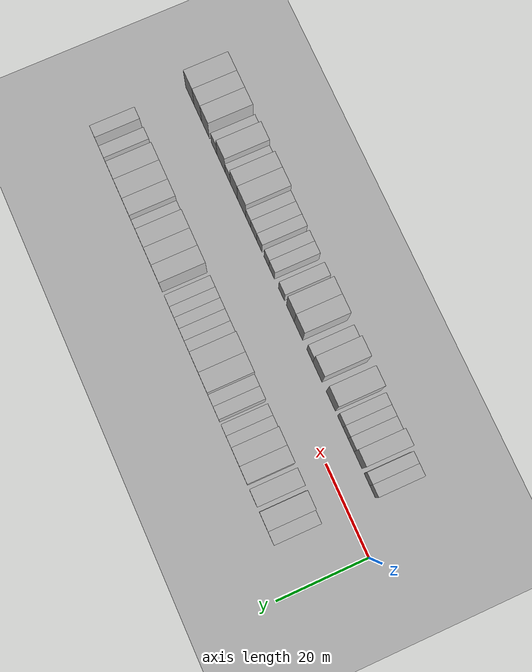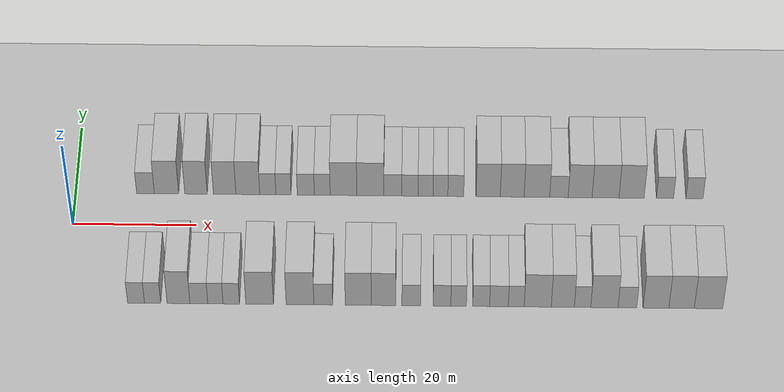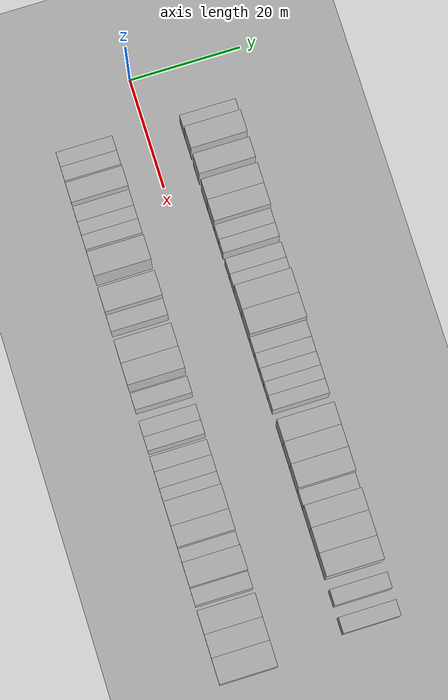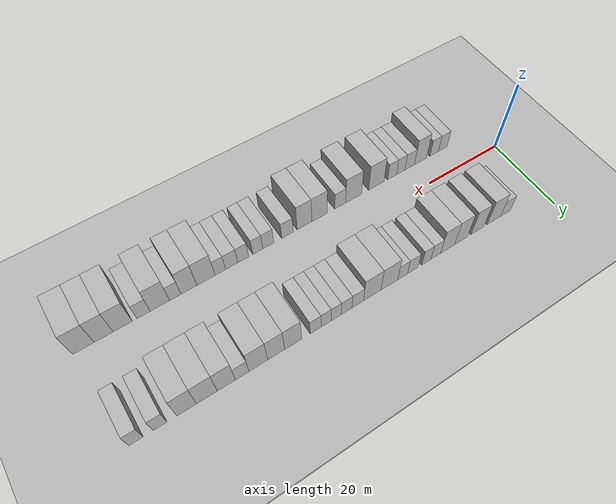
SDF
<sdf version="1.6">
 <world name="default">
  <include><name>ground_plane_1</name><uri>model://HANNAS_ground_plane</uri></include>
  <include>
   <name>ground_plane_2</name>
   <uri>model://HANNAS_ground_plane</uri>
   <pose>100 0 0  0 0 0</pose>
  </include>
  <model name="building_1">
   <static>1</static>
   <pose>11.4405 11.0000 0 0.000000 0.000000 1.570796</pose>
   <link name="link">
    <pose>0 0 3.00 0 0 0</pose>
    <collision name="collision"><geometry><box><size>10.0000 2.8811 6.0000</size></box></geometry></collision>
    <visual name="visual">
     <cast_shadows>0</cast_shadows>
     <geometry><box><size>10.0000 2.8811 6.0000</size></box></geometry>
     <material>
      <script>
       <uri>model://HANNAS_wall/materials/scripts</uri>
       <uri>model://HANNAS_wall/materials/textures</uri>
       <name>vrc/HANNAS_wall</name>
      </script>
     </material>
    </visual>
   </link>
  </model>
  <model name="building_2">
   <static>1</static>
   <pose>14.8605 11.0000 0 0.000000 0.000000 1.570796</pose>
   <link name="link">
    <pose>0 0 4.50 0 0 0</pose>
    <collision name="collision"><geometry><box><size>10.0000 3.9588 9.0000</size></box></geometry></collision>
    <visual name="visual">
     <cast_shadows>0</cast_shadows>
     <geometry><box><size>10.0000 3.9588 9.0000</size></box></geometry>
     <material>
      <script>
       <uri>model://HANNAS_wall/materials/scripts</uri>
       <uri>model://HANNAS_wall/materials/textures</uri>
       <name>vrc/HANNAS_wall</name>
      </script>
     </material>
    </visual>
   </link>
  </model>
  <model name="building_3">
   <static>1</static>
   <pose>19.6624 11.0000 0 0.000000 0.000000 1.570796</pose>
   <link name="link">
    <pose>0 0 4.50 0 0 0</pose>
    <collision name="collision"><geometry><box><size>10.0000 3.6451 9.0000</size></box></geometry></collision>
    <visual name="visual">
     <cast_shadows>0</cast_shadows>
     <geometry><box><size>10.0000 3.6451 9.0000</size></box></geometry>
     <material>
      <script>
       <uri>model://HANNAS_wall/materials/scripts</uri>
       <uri>model://HANNAS_wall/materials/textures</uri>
       <name>vrc/HANNAS_wall</name>
      </script>
     </material>
    </visual>
   </link>
  </model>
  <model name="building_4">
   <static>1</static>
   <pose>24.3171 11.0000 0 0.000000 0.000000 1.570796</pose>
   <link name="link">
    <pose>0 0 4.50 0 0 0</pose>
    <collision name="collision"><geometry><box><size>10.0000 3.6643 9.0000</size></box></geometry></collision>
    <visual name="visual">
     <cast_shadows>0</cast_shadows>
     <geometry><box><size>10.0000 3.6643 9.0000</size></box></geometry>
     <material>
      <script>
       <uri>model://HANNAS_wall/materials/scripts</uri>
       <uri>model://HANNAS_wall/materials/textures</uri>
       <name>vrc/HANNAS_wall</name>
      </script>
     </material>
    </visual>
   </link>
  </model>
  <model name="building_5">
   <static>1</static>
   <pose>28.0884 11.0000 0 0.000000 0.000000 1.570796</pose>
   <link name="link">
    <pose>0 0 4.50 0 0 0</pose>
    <collision name="collision"><geometry><box><size>10.0000 3.8783 9.0000</size></box></geometry></collision>
    <visual name="visual">
     <cast_shadows>0</cast_shadows>
     <geometry><box><size>10.0000 3.8783 9.0000</size></box></geometry>
     <material>
      <script>
       <uri>model://HANNAS_wall/materials/scripts</uri>
       <uri>model://HANNAS_wall/materials/textures</uri>
       <name>vrc/HANNAS_wall</name>
      </script>
     </material>
    </visual>
   </link>
  </model>
  <model name="building_6">
   <static>1</static>
   <pose>31.3424 11.0000 0 0.000000 0.000000 1.570796</pose>
   <link name="link">
    <pose>0 0 3.00 0 0 0</pose>
    <collision name="collision"><geometry><box><size>10.0000 2.6296 6.0000</size></box></geometry></collision>
    <visual name="visual">
     <cast_shadows>0</cast_shadows>
     <geometry><box><size>10.0000 2.6296 6.0000</size></box></geometry>
     <material>
      <script>
       <uri>model://HANNAS_wall/materials/scripts</uri>
       <uri>model://HANNAS_wall/materials/textures</uri>
       <name>vrc/HANNAS_wall</name>
      </script>
     </material>
    </visual>
   </link>
  </model>
  <model name="building_7">
   <static>1</static>
   <pose>33.8938 11.0000 0 0.000000 0.000000 1.570796</pose>
   <link name="link">
    <pose>0 0 3.00 0 0 0</pose>
    <collision name="collision"><geometry><box><size>10.0000 2.4733 6.0000</size></box></geometry></collision>
    <visual name="visual">
     <cast_shadows>0</cast_shadows>
     <geometry><box><size>10.0000 2.4733 6.0000</size></box></geometry>
     <material>
      <script>
       <uri>model://HANNAS_wall/materials/scripts</uri>
       <uri>model://HANNAS_wall/materials/textures</uri>
       <name>vrc/HANNAS_wall</name>
      </script>
     </material>
    </visual>
   </link>
  </model>
  <model name="building_8">
   <static>1</static>
   <pose>37.5227 11.0000 0 0.000000 0.000000 1.570796</pose>
   <link name="link">
    <pose>0 0 3.00 0 0 0</pose>
    <collision name="collision"><geometry><box><size>10.0000 2.7844 6.0000</size></box></geometry></collision>
    <visual name="visual">
     <cast_shadows>0</cast_shadows>
     <geometry><box><size>10.0000 2.7844 6.0000</size></box></geometry>
     <material>
      <script>
       <uri>model://HANNAS_wall/materials/scripts</uri>
       <uri>model://HANNAS_wall/materials/textures</uri>
       <name>vrc/HANNAS_wall</name>
      </script>
     </material>
    </visual>
   </link>
  </model>
  <model name="building_9">
   <static>1</static>
   <pose>40.1986 11.0000 0 0.000000 0.000000 1.570796</pose>
   <link name="link">
    <pose>0 0 3.00 0 0 0</pose>
    <collision name="collision"><geometry><box><size>10.0000 2.5675 6.0000</size></box></geometry></collision>
    <visual name="visual">
     <cast_shadows>0</cast_shadows>
     <geometry><box><size>10.0000 2.5675 6.0000</size></box></geometry>
     <material>
      <script>
       <uri>model://HANNAS_wall/materials/scripts</uri>
       <uri>model://HANNAS_wall/materials/textures</uri>
       <name>vrc/HANNAS_wall</name>
      </script>
     </material>
    </visual>
   </link>
  </model>
  <model name="building_10">
   <static>1</static>
   <pose>43.6532 11.0000 0 0.000000 0.000000 1.570796</pose>
   <link name="link">
    <pose>0 0 4.50 0 0 0</pose>
    <collision name="collision"><geometry><box><size>10.0000 4.3418 9.0000</size></box></geometry></collision>
    <visual name="visual">
     <cast_shadows>0</cast_shadows>
     <geometry><box><size>10.0000 4.3418 9.0000</size></box></geometry>
     <material>
      <script>
       <uri>model://HANNAS_wall/materials/scripts</uri>
       <uri>model://HANNAS_wall/materials/textures</uri>
       <name>vrc/HANNAS_wall</name>
      </script>
     </material>
    </visual>
   </link>
  </model>
  <model name="building_11">
   <static>1</static>
   <pose>48.0235 11.0000 0 0.000000 0.000000 1.570796</pose>
   <link name="link">
    <pose>0 0 4.50 0 0 0</pose>
    <collision name="collision"><geometry><box><size>10.0000 4.3988 9.0000</size></box></geometry></collision>
    <visual name="visual">
     <cast_shadows>0</cast_shadows>
     <geometry><box><size>10.0000 4.3988 9.0000</size></box></geometry>
     <material>
      <script>
       <uri>model://HANNAS_wall/materials/scripts</uri>
       <uri>model://HANNAS_wall/materials/textures</uri>
       <name>vrc/HANNAS_wall</name>
      </script>
     </material>
    </visual>
   </link>
  </model>
  <model name="building_12">
   <static>1</static>
   <pose>51.6736 11.0000 0 0.000000 0.000000 1.570796</pose>
   <link name="link">
    <pose>0 0 3.00 0 0 0</pose>
    <collision name="collision"><geometry><box><size>10.0000 2.9014 6.0000</size></box></geometry></collision>
    <visual name="visual">
     <cast_shadows>0</cast_shadows>
     <geometry><box><size>10.0000 2.9014 6.0000</size></box></geometry>
     <material>
      <script>
       <uri>model://HANNAS_wall/materials/scripts</uri>
       <uri>model://HANNAS_wall/materials/textures</uri>
       <name>vrc/HANNAS_wall</name>
      </script>
     </material>
    </visual>
   </link>
  </model>
  <model name="building_13">
   <static>1</static>
   <pose>54.4530 11.0000 0 0.000000 0.000000 1.570796</pose>
   <link name="link">
    <pose>0 0 3.00 0 0 0</pose>
    <collision name="collision"><geometry><box><size>10.0000 2.6574 6.0000</size></box></geometry></collision>
    <visual name="visual">
     <cast_shadows>0</cast_shadows>
     <geometry><box><size>10.0000 2.6574 6.0000</size></box></geometry>
     <material>
      <script>
       <uri>model://HANNAS_wall/materials/scripts</uri>
       <uri>model://HANNAS_wall/materials/textures</uri>
       <name>vrc/HANNAS_wall</name>
      </script>
     </material>
    </visual>
   </link>
  </model>
  <model name="building_14">
   <static>1</static>
   <pose>56.9940 11.0000 0 0.000000 0.000000 1.570796</pose>
   <link name="link">
    <pose>0 0 3.00 0 0 0</pose>
    <collision name="collision"><geometry><box><size>10.0000 2.4246 6.0000</size></box></geometry></collision>
    <visual name="visual">
     <cast_shadows>0</cast_shadows>
     <geometry><box><size>10.0000 2.4246 6.0000</size></box></geometry>
     <material>
      <script>
       <uri>model://HANNAS_wall/materials/scripts</uri>
       <uri>model://HANNAS_wall/materials/textures</uri>
       <name>vrc/HANNAS_wall</name>
      </script>
     </material>
    </visual>
   </link>
  </model>
  <model name="building_15">
   <static>1</static>
   <pose>59.4090 11.0000 0 0.000000 0.000000 1.570796</pose>
   <link name="link">
    <pose>0 0 3.00 0 0 0</pose>
    <collision name="collision"><geometry><box><size>10.0000 2.4054 6.0000</size></box></geometry></collision>
    <visual name="visual">
     <cast_shadows>0</cast_shadows>
     <geometry><box><size>10.0000 2.4054 6.0000</size></box></geometry>
     <material>
      <script>
       <uri>model://HANNAS_wall/materials/scripts</uri>
       <uri>model://HANNAS_wall/materials/textures</uri>
       <name>vrc/HANNAS_wall</name>
      </script>
     </material>
    </visual>
   </link>
  </model>
  <model name="building_16">
   <static>1</static>
   <pose>61.9006 11.0000 0 0.000000 0.000000 1.570796</pose>
   <link name="link">
    <pose>0 0 3.00 0 0 0</pose>
    <collision name="collision"><geometry><box><size>10.0000 2.5778 6.0000</size></box></geometry></collision>
    <visual name="visual">
     <cast_shadows>0</cast_shadows>
     <geometry><box><size>10.0000 2.5778 6.0000</size></box></geometry>
     <material>
      <script>
       <uri>model://HANNAS_wall/materials/scripts</uri>
       <uri>model://HANNAS_wall/materials/textures</uri>
       <name>vrc/HANNAS_wall</name>
      </script>
     </material>
    </visual>
   </link>
  </model>
  <model name="building_17">
   <static>1</static>
   <pose>67.1540 11.0000 0 0.000000 0.000000 1.570796</pose>
   <link name="link">
    <pose>0 0 4.50 0 0 0</pose>
    <collision name="collision"><geometry><box><size>10.0000 3.9290 9.0000</size></box></geometry></collision>
    <visual name="visual">
     <cast_shadows>0</cast_shadows>
     <geometry><box><size>10.0000 3.9290 9.0000</size></box></geometry>
     <material>
      <script>
       <uri>model://HANNAS_wall/materials/scripts</uri>
       <uri>model://HANNAS_wall/materials/textures</uri>
       <name>vrc/HANNAS_wall</name>
      </script>
     </material>
    </visual>
   </link>
  </model>
  <model name="building_18">
   <static>1</static>
   <pose>71.0563 11.0000 0 0.000000 0.000000 1.570796</pose>
   <link name="link">
    <pose>0 0 4.50 0 0 0</pose>
    <collision name="collision"><geometry><box><size>10.0000 3.8756 9.0000</size></box></geometry></collision>
    <visual name="visual">
     <cast_shadows>0</cast_shadows>
     <geometry><box><size>10.0000 3.8756 9.0000</size></box></geometry>
     <material>
      <script>
       <uri>model://HANNAS_wall/materials/scripts</uri>
       <uri>model://HANNAS_wall/materials/textures</uri>
       <name>vrc/HANNAS_wall</name>
      </script>
     </material>
    </visual>
   </link>
  </model>
  <model name="building_19">
   <static>1</static>
   <pose>75.0803 11.0000 0 0.000000 0.000000 1.570796</pose>
   <link name="link">
    <pose>0 0 4.50 0 0 0</pose>
    <collision name="collision"><geometry><box><size>10.0000 4.1723 9.0000</size></box></geometry></collision>
    <visual name="visual">
     <cast_shadows>0</cast_shadows>
     <geometry><box><size>10.0000 4.1723 9.0000</size></box></geometry>
     <material>
      <script>
       <uri>model://HANNAS_wall/materials/scripts</uri>
       <uri>model://HANNAS_wall/materials/textures</uri>
       <name>vrc/HANNAS_wall</name>
      </script>
     </material>
    </visual>
   </link>
  </model>
  <model name="building_20">
   <static>1</static>
   <pose>78.6641 11.0000 0 0.000000 0.000000 1.570796</pose>
   <link name="link">
    <pose>0 0 3.00 0 0 0</pose>
    <collision name="collision"><geometry><box><size>10.0000 2.9954 6.0000</size></box></geometry></collision>
    <visual name="visual">
     <cast_shadows>0</cast_shadows>
     <geometry><box><size>10.0000 2.9954 6.0000</size></box></geometry>
     <material>
      <script>
       <uri>model://HANNAS_wall/materials/scripts</uri>
       <uri>model://HANNAS_wall/materials/textures</uri>
       <name>vrc/HANNAS_wall</name>
      </script>
     </material>
    </visual>
   </link>
  </model>
  <model name="building_21">
   <static>1</static>
   <pose>82.1052 11.0000 0 0.000000 0.000000 1.570796</pose>
   <link name="link">
    <pose>0 0 4.50 0 0 0</pose>
    <collision name="collision"><geometry><box><size>10.0000 3.8867 9.0000</size></box></geometry></collision>
    <visual name="visual">
     <cast_shadows>0</cast_shadows>
     <geometry><box><size>10.0000 3.8867 9.0000</size></box></geometry>
     <material>
      <script>
       <uri>model://HANNAS_wall/materials/scripts</uri>
       <uri>model://HANNAS_wall/materials/textures</uri>
       <name>vrc/HANNAS_wall</name>
      </script>
     </material>
    </visual>
   </link>
  </model>
  <model name="building_22">
   <static>1</static>
   <pose>86.2344 11.0000 0 0.000000 0.000000 1.570796</pose>
   <link name="link">
    <pose>0 0 4.50 0 0 0</pose>
    <collision name="collision"><geometry><box><size>10.0000 4.3718 9.0000</size></box></geometry></collision>
    <visual name="visual">
     <cast_shadows>0</cast_shadows>
     <geometry><box><size>10.0000 4.3718 9.0000</size></box></geometry>
     <material>
      <script>
       <uri>model://HANNAS_wall/materials/scripts</uri>
       <uri>model://HANNAS_wall/materials/textures</uri>
       <name>vrc/HANNAS_wall</name>
      </script>
     </material>
    </visual>
   </link>
  </model>
  <model name="building_23">
   <static>1</static>
   <pose>90.4576 11.0000 0 0.000000 0.000000 1.570796</pose>
   <link name="link">
    <pose>0 0 4.50 0 0 0</pose>
    <collision name="collision"><geometry><box><size>10.0000 4.0745 9.0000</size></box></geometry></collision>
    <visual name="visual">
     <cast_shadows>0</cast_shadows>
     <geometry><box><size>10.0000 4.0745 9.0000</size></box></geometry>
     <material>
      <script>
       <uri>model://HANNAS_wall/materials/scripts</uri>
       <uri>model://HANNAS_wall/materials/textures</uri>
       <name>vrc/HANNAS_wall</name>
      </script>
     </material>
    </visual>
   </link>
  </model>
  <model name="building_24">
   <static>1</static>
   <pose>95.8863 11.0000 0 0.000000 0.000000 1.570796</pose>
   <link name="link">
    <pose>0 0 3.00 0 0 0</pose>
    <collision name="collision"><geometry><box><size>10.0000 2.7829 6.0000</size></box></geometry></collision>
    <visual name="visual">
     <cast_shadows>0</cast_shadows>
     <geometry><box><size>10.0000 2.7829 6.0000</size></box></geometry>
     <material>
      <script>
       <uri>model://HANNAS_wall/materials/scripts</uri>
       <uri>model://HANNAS_wall/materials/textures</uri>
       <name>vrc/HANNAS_wall</name>
      </script>
     </material>
    </visual>
   </link>
  </model>
  <model name="building_25">
   <static>1</static>
   <pose>100.6699 11.0000 0 0.000000 0.000000 1.570796</pose>
   <link name="link">
    <pose>0 0 3.00 0 0 0</pose>
    <collision name="collision"><geometry><box><size>10.0000 2.7842 6.0000</size></box></geometry></collision>
    <visual name="visual">
     <cast_shadows>0</cast_shadows>
     <geometry><box><size>10.0000 2.7842 6.0000</size></box></geometry>
     <material>
      <script>
       <uri>model://HANNAS_wall/materials/scripts</uri>
       <uri>model://HANNAS_wall/materials/textures</uri>
       <name>vrc/HANNAS_wall</name>
      </script>
     </material>
    </visual>
   </link>
  </model>
  <model name="building_51">
   <static>1</static>
   <pose>11.3360 -11.0000 0 0.000000 0.000000 1.570796</pose>
   <link name="link">
    <pose>0 0 3.00 0 0 0</pose>
    <collision name="collision"><geometry><box><size>10.0000 2.6720 6.0000</size></box></geometry></collision>
    <visual name="visual">
     <cast_shadows>0</cast_shadows>
     <geometry><box><size>10.0000 2.6720 6.0000</size></box></geometry>
     <material>
      <script>
       <uri>model://HANNAS_wall/materials/scripts</uri>
       <uri>model://HANNAS_wall/materials/textures</uri>
       <name>vrc/HANNAS_wall</name>
      </script>
     </material>
    </visual>
   </link>
  </model>
  <model name="building_52">
   <static>1</static>
   <pose>13.9558 -11.0000 0 0.000000 0.000000 1.570796</pose>
   <link name="link">
    <pose>0 0 3.00 0 0 0</pose>
    <collision name="collision"><geometry><box><size>10.0000 2.5675 6.0000</size></box></geometry></collision>
    <visual name="visual">
     <cast_shadows>0</cast_shadows>
     <geometry><box><size>10.0000 2.5675 6.0000</size></box></geometry>
     <material>
      <script>
       <uri>model://HANNAS_wall/materials/scripts</uri>
       <uri>model://HANNAS_wall/materials/textures</uri>
       <name>vrc/HANNAS_wall</name>
      </script>
     </material>
    </visual>
   </link>
  </model>
  <model name="building_53">
   <static>1</static>
   <pose>18.0483 -11.0000 0 0.000000 0.000000 1.570796</pose>
   <link name="link">
    <pose>0 0 4.50 0 0 0</pose>
    <collision name="collision"><geometry><box><size>10.0000 3.6175 9.0000</size></box></geometry></collision>
    <visual name="visual">
     <cast_shadows>0</cast_shadows>
     <geometry><box><size>10.0000 3.6175 9.0000</size></box></geometry>
     <material>
      <script>
       <uri>model://HANNAS_wall/materials/scripts</uri>
       <uri>model://HANNAS_wall/materials/textures</uri>
       <name>vrc/HANNAS_wall</name>
      </script>
     </material>
    </visual>
   </link>
  </model>
  <model name="building_54">
   <static>1</static>
   <pose>21.2673 -11.0000 0 0.000000 0.000000 1.570796</pose>
   <link name="link">
    <pose>0 0 3.00 0 0 0</pose>
    <collision name="collision"><geometry><box><size>10.0000 2.8205 6.0000</size></box></geometry></collision>
    <visual name="visual">
     <cast_shadows>0</cast_shadows>
     <geometry><box><size>10.0000 2.8205 6.0000</size></box></geometry>
     <material>
      <script>
       <uri>model://HANNAS_wall/materials/scripts</uri>
       <uri>model://HANNAS_wall/materials/textures</uri>
       <name>vrc/HANNAS_wall</name>
      </script>
     </material>
    </visual>
   </link>
  </model>
  <model name="building_55">
   <static>1</static>
   <pose>23.8842 -11.0000 0 0.000000 0.000000 1.570796</pose>
   <link name="link">
    <pose>0 0 3.00 0 0 0</pose>
    <collision name="collision"><geometry><box><size>10.0000 2.4133 6.0000</size></box></geometry></collision>
    <visual name="visual">
     <cast_shadows>0</cast_shadows>
     <geometry><box><size>10.0000 2.4133 6.0000</size></box></geometry>
     <material>
      <script>
       <uri>model://HANNAS_wall/materials/scripts</uri>
       <uri>model://HANNAS_wall/materials/textures</uri>
       <name>vrc/HANNAS_wall</name>
      </script>
     </material>
    </visual>
   </link>
  </model>
  <model name="building_56">
   <static>1</static>
   <pose>26.3977 -11.0000 0 0.000000 0.000000 1.570796</pose>
   <link name="link">
    <pose>0 0 3.00 0 0 0</pose>
    <collision name="collision"><geometry><box><size>10.0000 2.6137 6.0000</size></box></geometry></collision>
    <visual name="visual">
     <cast_shadows>0</cast_shadows>
     <geometry><box><size>10.0000 2.6137 6.0000</size></box></geometry>
     <material>
      <script>
       <uri>model://HANNAS_wall/materials/scripts</uri>
       <uri>model://HANNAS_wall/materials/textures</uri>
       <name>vrc/HANNAS_wall</name>
      </script>
     </material>
    </visual>
   </link>
  </model>
  <model name="building_57">
   <static>1</static>
   <pose>30.8905 -11.0000 0 0.000000 0.000000 1.570796</pose>
   <link name="link">
    <pose>0 0 4.50 0 0 0</pose>
    <collision name="collision"><geometry><box><size>10.0000 4.3717 9.0000</size></box></geometry></collision>
    <visual name="visual">
     <cast_shadows>0</cast_shadows>
     <geometry><box><size>10.0000 4.3717 9.0000</size></box></geometry>
     <material>
      <script>
       <uri>model://HANNAS_wall/materials/scripts</uri>
       <uri>model://HANNAS_wall/materials/textures</uri>
       <name>vrc/HANNAS_wall</name>
      </script>
     </material>
    </visual>
   </link>
  </model>
  <model name="building_58">
   <static>1</static>
   <pose>37.2722 -11.0000 0 0.000000 0.000000 1.570796</pose>
   <link name="link">
    <pose>0 0 4.50 0 0 0</pose>
    <collision name="collision"><geometry><box><size>10.0000 4.3919 9.0000</size></box></geometry></collision>
    <visual name="visual">
     <cast_shadows>0</cast_shadows>
     <geometry><box><size>10.0000 4.3919 9.0000</size></box></geometry>
     <material>
      <script>
       <uri>model://HANNAS_wall/materials/scripts</uri>
       <uri>model://HANNAS_wall/materials/textures</uri>
       <name>vrc/HANNAS_wall</name>
      </script>
     </material>
    </visual>
   </link>
  </model>
  <model name="building_59">
   <static>1</static>
   <pose>40.9439 -11.0000 0 0.000000 0.000000 1.570796</pose>
   <link name="link">
    <pose>0 0 3.00 0 0 0</pose>
    <collision name="collision"><geometry><box><size>10.0000 2.9516 6.0000</size></box></geometry></collision>
    <visual name="visual">
     <cast_shadows>0</cast_shadows>
     <geometry><box><size>10.0000 2.9516 6.0000</size></box></geometry>
     <material>
      <script>
       <uri>model://HANNAS_wall/materials/scripts</uri>
       <uri>model://HANNAS_wall/materials/textures</uri>
       <name>vrc/HANNAS_wall</name>
      </script>
     </material>
    </visual>
   </link>
  </model>
  <model name="building_60">
   <static>1</static>
   <pose>46.4747 -11.0000 0 0.000000 0.000000 1.570796</pose>
   <link name="link">
    <pose>0 0 4.50 0 0 0</pose>
    <collision name="collision"><geometry><box><size>10.0000 4.1099 9.0000</size></box></geometry></collision>
    <visual name="visual">
     <cast_shadows>0</cast_shadows>
     <geometry><box><size>10.0000 4.1099 9.0000</size></box></geometry>
     <material>
      <script>
       <uri>model://HANNAS_wall/materials/scripts</uri>
       <uri>model://HANNAS_wall/materials/textures</uri>
       <name>vrc/HANNAS_wall</name>
      </script>
     </material>
    </visual>
   </link>
  </model>
  <model name="building_61">
   <static>1</static>
   <pose>50.4518 -11.0000 0 0.000000 0.000000 1.570796</pose>
   <link name="link">
    <pose>0 0 4.50 0 0 0</pose>
    <collision name="collision"><geometry><box><size>10.0000 3.8443 9.0000</size></box></geometry></collision>
    <visual name="visual">
     <cast_shadows>0</cast_shadows>
     <geometry><box><size>10.0000 3.8443 9.0000</size></box></geometry>
     <material>
      <script>
       <uri>model://HANNAS_wall/materials/scripts</uri>
       <uri>model://HANNAS_wall/materials/textures</uri>
       <name>vrc/HANNAS_wall</name>
      </script>
     </material>
    </visual>
   </link>
  </model>
  <model name="building_62">
   <static>1</static>
   <pose>54.8474 -11.0000 0 0.000000 0.000000 1.570796</pose>
   <link name="link">
    <pose>0 0 3.00 0 0 0</pose>
    <collision name="collision"><geometry><box><size>10.0000 2.9469 6.0000</size></box></geometry></collision>
    <visual name="visual">
     <cast_shadows>0</cast_shadows>
     <geometry><box><size>10.0000 2.9469 6.0000</size></box></geometry>
     <material>
      <script>
       <uri>model://HANNAS_wall/materials/scripts</uri>
       <uri>model://HANNAS_wall/materials/textures</uri>
       <name>vrc/HANNAS_wall</name>
      </script>
     </material>
    </visual>
   </link>
  </model>
  <model name="building_63">
   <static>1</static>
   <pose>59.7049 -11.0000 0 0.000000 0.000000 1.570796</pose>
   <link name="link">
    <pose>0 0 3.00 0 0 0</pose>
    <collision name="collision"><geometry><box><size>10.0000 2.7681 6.0000</size></box></geometry></collision>
    <visual name="visual">
     <cast_shadows>0</cast_shadows>
     <geometry><box><size>10.0000 2.7681 6.0000</size></box></geometry>
     <material>
      <script>
       <uri>model://HANNAS_wall/materials/scripts</uri>
       <uri>model://HANNAS_wall/materials/textures</uri>
       <name>vrc/HANNAS_wall</name>
      </script>
     </material>
    </visual>
   </link>
  </model>
  <model name="building_64">
   <static>1</static>
   <pose>62.3211 -11.0000 0 0.000000 0.000000 1.570796</pose>
   <link name="link">
    <pose>0 0 3.00 0 0 0</pose>
    <collision name="collision"><geometry><box><size>10.0000 2.4643 6.0000</size></box></geometry></collision>
    <visual name="visual">
     <cast_shadows>0</cast_shadows>
     <geometry><box><size>10.0000 2.4643 6.0000</size></box></geometry>
     <material>
      <script>
       <uri>model://HANNAS_wall/materials/scripts</uri>
       <uri>model://HANNAS_wall/materials/textures</uri>
       <name>vrc/HANNAS_wall</name>
      </script>
     </material>
    </visual>
   </link>
  </model>
  <model name="building_65">
   <static>1</static>
   <pose>65.8894 -11.0000 0 0.000000 0.000000 1.570796</pose>
   <link name="link">
    <pose>0 0 3.00 0 0 0</pose>
    <collision name="collision"><geometry><box><size>10.0000 2.6723 6.0000</size></box></geometry></collision>
    <visual name="visual">
     <cast_shadows>0</cast_shadows>
     <geometry><box><size>10.0000 2.6723 6.0000</size></box></geometry>
     <material>
      <script>
       <uri>model://HANNAS_wall/materials/scripts</uri>
       <uri>model://HANNAS_wall/materials/textures</uri>
       <name>vrc/HANNAS_wall</name>
      </script>
     </material>
    </visual>
   </link>
  </model>
  <model name="building_66">
   <static>1</static>
   <pose>68.6961 -11.0000 0 0.000000 0.000000 1.570796</pose>
   <link name="link">
    <pose>0 0 3.00 0 0 0</pose>
    <collision name="collision"><geometry><box><size>10.0000 2.9411 6.0000</size></box></geometry></collision>
    <visual name="visual">
     <cast_shadows>0</cast_shadows>
     <geometry><box><size>10.0000 2.9411 6.0000</size></box></geometry>
     <material>
      <script>
       <uri>model://HANNAS_wall/materials/scripts</uri>
       <uri>model://HANNAS_wall/materials/textures</uri>
       <name>vrc/HANNAS_wall</name>
      </script>
     </material>
    </visual>
   </link>
  </model>
  <model name="building_67">
   <static>1</static>
   <pose>71.4258 -11.0000 0 0.000000 0.000000 1.570796</pose>
   <link name="link">
    <pose>0 0 3.00 0 0 0</pose>
    <collision name="collision"><geometry><box><size>10.0000 2.5183 6.0000</size></box></geometry></collision>
    <visual name="visual">
     <cast_shadows>0</cast_shadows>
     <geometry><box><size>10.0000 2.5183 6.0000</size></box></geometry>
     <material>
      <script>
       <uri>model://HANNAS_wall/materials/scripts</uri>
       <uri>model://HANNAS_wall/materials/textures</uri>
       <name>vrc/HANNAS_wall</name>
      </script>
     </material>
    </visual>
   </link>
  </model>
  <model name="building_68">
   <static>1</static>
   <pose>74.8201 -11.0000 0 0.000000 0.000000 1.570796</pose>
   <link name="link">
    <pose>0 0 4.50 0 0 0</pose>
    <collision name="collision"><geometry><box><size>10.0000 4.2704 9.0000</size></box></geometry></collision>
    <visual name="visual">
     <cast_shadows>0</cast_shadows>
     <geometry><box><size>10.0000 4.2704 9.0000</size></box></geometry>
     <material>
      <script>
       <uri>model://HANNAS_wall/materials/scripts</uri>
       <uri>model://HANNAS_wall/materials/textures</uri>
       <name>vrc/HANNAS_wall</name>
      </script>
     </material>
    </visual>
   </link>
  </model>
  <model name="building_69">
   <static>1</static>
   <pose>78.7788 -11.0000 0 0.000000 0.000000 1.570796</pose>
   <link name="link">
    <pose>0 0 4.50 0 0 0</pose>
    <collision name="collision"><geometry><box><size>10.0000 3.6469 9.0000</size></box></geometry></collision>
    <visual name="visual">
     <cast_shadows>0</cast_shadows>
     <geometry><box><size>10.0000 3.6469 9.0000</size></box></geometry>
     <material>
      <script>
       <uri>model://HANNAS_wall/materials/scripts</uri>
       <uri>model://HANNAS_wall/materials/textures</uri>
       <name>vrc/HANNAS_wall</name>
      </script>
     </material>
    </visual>
   </link>
  </model>
  <model name="building_70">
   <static>1</static>
   <pose>81.9001 -11.0000 0 0.000000 0.000000 1.570796</pose>
   <link name="link">
    <pose>0 0 3.00 0 0 0</pose>
    <collision name="collision"><geometry><box><size>10.0000 2.5957 6.0000</size></box></geometry></collision>
    <visual name="visual">
     <cast_shadows>0</cast_shadows>
     <geometry><box><size>10.0000 2.5957 6.0000</size></box></geometry>
     <material>
      <script>
       <uri>model://HANNAS_wall/materials/scripts</uri>
       <uri>model://HANNAS_wall/materials/textures</uri>
       <name>vrc/HANNAS_wall</name>
      </script>
     </material>
    </visual>
   </link>
  </model>
  <model name="building_71">
   <static>1</static>
   <pose>85.3523 -11.0000 0 0.000000 0.000000 1.570796</pose>
   <link name="link">
    <pose>0 0 4.50 0 0 0</pose>
    <collision name="collision"><geometry><box><size>10.0000 4.3088 9.0000</size></box></geometry></collision>
    <visual name="visual">
     <cast_shadows>0</cast_shadows>
     <geometry><box><size>10.0000 4.3088 9.0000</size></box></geometry>
     <material>
      <script>
       <uri>model://HANNAS_wall/materials/scripts</uri>
       <uri>model://HANNAS_wall/materials/textures</uri>
       <name>vrc/HANNAS_wall</name>
      </script>
     </material>
    </visual>
   </link>
  </model>
  <model name="building_72">
   <static>1</static>
   <pose>88.9831 -11.0000 0 0.000000 0.000000 1.570796</pose>
   <link name="link">
    <pose>0 0 3.00 0 0 0</pose>
    <collision name="collision"><geometry><box><size>10.0000 2.9528 6.0000</size></box></geometry></collision>
    <visual name="visual">
     <cast_shadows>0</cast_shadows>
     <geometry><box><size>10.0000 2.9528 6.0000</size></box></geometry>
     <material>
      <script>
       <uri>model://HANNAS_wall/materials/scripts</uri>
       <uri>model://HANNAS_wall/materials/textures</uri>
       <name>vrc/HANNAS_wall</name>
      </script>
     </material>
    </visual>
   </link>
  </model>
  <model name="building_73">
   <static>1</static>
   <pose>93.5004 -11.0000 0 0.000000 0.000000 1.570796</pose>
   <link name="link">
    <pose>0 0 4.50 0 0 0</pose>
    <collision name="collision"><geometry><box><size>10.0000 4.0819 9.0000</size></box></geometry></collision>
    <visual name="visual">
     <cast_shadows>0</cast_shadows>
     <geometry><box><size>10.0000 4.0819 9.0000</size></box></geometry>
     <material>
      <script>
       <uri>model://HANNAS_wall/materials/scripts</uri>
       <uri>model://HANNAS_wall/materials/textures</uri>
       <name>vrc/HANNAS_wall</name>
      </script>
     </material>
    </visual>
   </link>
  </model>
  <model name="building_74">
   <static>1</static>
   <pose>97.5448 -11.0000 0 0.000000 0.000000 1.570796</pose>
   <link name="link">
    <pose>0 0 4.50 0 0 0</pose>
    <collision name="collision"><geometry><box><size>10.0000 4.0068 9.0000</size></box></geometry></collision>
    <visual name="visual">
     <cast_shadows>0</cast_shadows>
     <geometry><box><size>10.0000 4.0068 9.0000</size></box></geometry>
     <material>
      <script>
       <uri>model://HANNAS_wall/materials/scripts</uri>
       <uri>model://HANNAS_wall/materials/textures</uri>
       <name>vrc/HANNAS_wall</name>
      </script>
     </material>
    </visual>
   </link>
  </model>
  <model name="building_75">
   <static>1</static>
   <pose>101.7864 -11.0000 0 0.000000 0.000000 1.570796</pose>
   <link name="link">
    <pose>0 0 4.50 0 0 0</pose>
    <collision name="collision"><geometry><box><size>10.0000 4.4765 9.0000</size></box></geometry></collision>
    <visual name="visual">
     <cast_shadows>0</cast_shadows>
     <geometry><box><size>10.0000 4.4765 9.0000</size></box></geometry>
     <material>
      <script>
       <uri>model://HANNAS_wall/materials/scripts</uri>
       <uri>model://HANNAS_wall/materials/textures</uri>
       <name>vrc/HANNAS_wall</name>
      </script>
     </material>
    </visual>
   </link>
  </model>
 </world>
</sdf>
